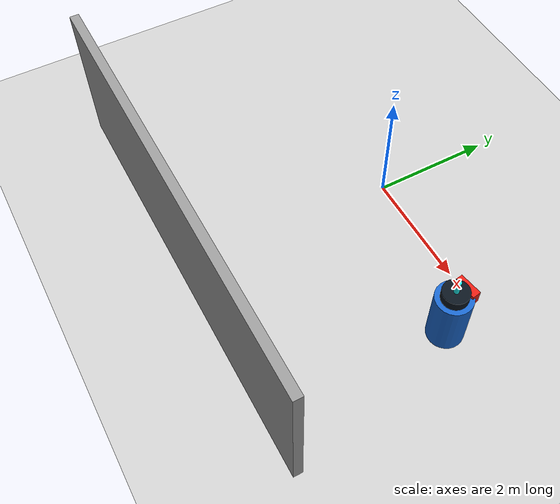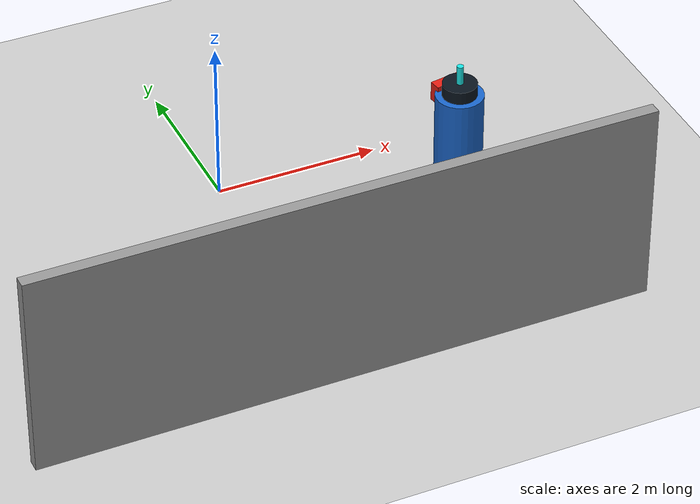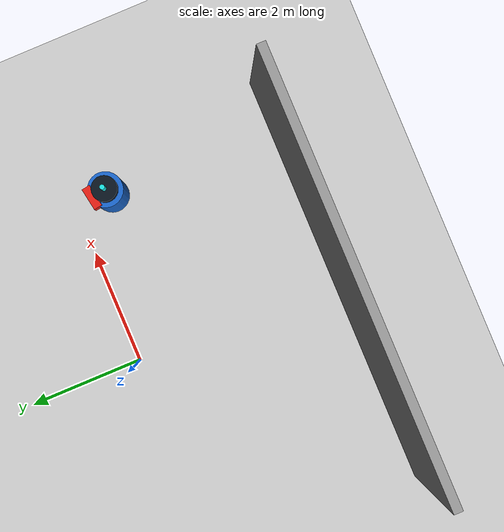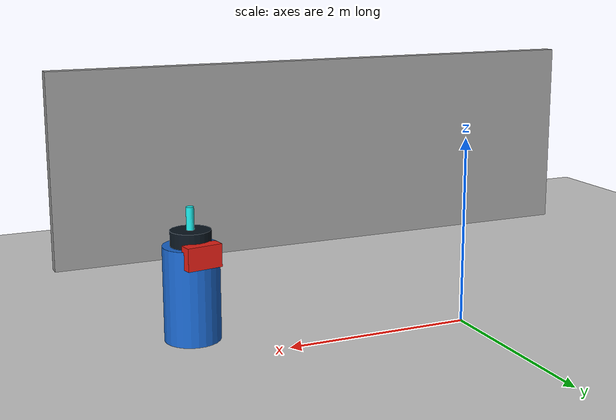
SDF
<sdf version="1.7">
 <world name="default">
  <plugin name="socnav_plugin" filename="libSocNavPlugin.so">
   <robot_name>robot</robot_name>
   <trajectory_file>/home/hunav_gz_classic_ws/SocNav3_trajectories/src6/000003814.json</trajectory_file>
   <human_slots>1</human_slots>
   <goal_angle_mesh>
    <angle_threshold>2.33477021821</angle_threshold>
    <uri>/home/hunav_gz_classic_ws/src/socnav_gazebo_reproducer/meshes/000003814_goal_angle_00.stl</uri>
   </goal_angle_mesh>
  </plugin>
  <light name="sun" type="directional">
   <pose>0 0 10 0 -0 0</pose>
   <diffuse>0.8 0.8 0.8 1</diffuse>
   <specular>0.2 0.2 0.2 1</specular>
   <attenuation>
    <range>1000</range>
    <constant>0.9</constant>
    <linear>0.01</linear>
    <quadratic>0.001</quadratic>
   </attenuation>
   <direction>-0.5 0.1 -0.9</direction>
   <spot><inner_angle>0</inner_angle><outer_angle>0</outer_angle><falloff>0</falloff></spot>
  </light>
  <model name="ground_plane">
   <static>1</static>
   <link name="link">
    <collision name="collision">
     <geometry><plane><normal>0 0 1</normal><size>100 100</size></plane></geometry>
     <surface><friction><ode><mu>100</mu><mu2>50</mu2></ode></friction></surface>
    </collision>
    <visual name="visual">
     <cast_shadows>0</cast_shadows>
     <geometry><plane><normal>0 0 1</normal><size>100 100</size></plane></geometry>
     <material>
      <script><uri>file://media/materials/scripts/kitchen.material</uri><name>Kitchen/CounterTop_H</name></script>
     </material>
    </visual>
   </link>
  </model>
  <gravity>0 0 -9.8</gravity>
  <magnetic_field>6e-06 2.3e-05 -4.2e-05</magnetic_field>
  <atmosphere type="adiabatic"/>
  <physics type="ode">
   <max_step_size>0.001</max_step_size>
   <real_time_factor>1</real_time_factor>
   <real_time_update_rate>1000</real_time_update_rate>
  </physics>
  <scene><ambient>0.4 0.4 0.4 1</ambient><background>0.7 0.7 0.7 1</background><shadows>1</shadows></scene>
  <audio><device>default</device></audio>
  <spherical_coordinates>
   <surface_model>EARTH_WGS84</surface_model>
   <latitude_deg>0</latitude_deg>
   <longitude_deg>0</longitude_deg>
   <elevation>0</elevation>
   <heading_deg>0</heading_deg>
  </spherical_coordinates>
  <model name="robot">
   <pose>2.8102148867667003 -0.6611837461238518 0.5 0 0 1.7351787613253449</pose>
   <link name="link">
    <collision name="collision">
     <geometry><cylinder><radius>0.29420983942868556</radius><length>1.0</length></cylinder></geometry>
    </collision>
    <visual name="visual">
     <geometry><cylinder><radius>0.29420983942868556</radius><length>1.0</length></cylinder></geometry>
     <material><ambient>0.1 0.4 0.8 1</ambient><diffuse>0.1 0.4 0.8 1</diffuse></material>
    </visual>
    <visual name="robot_top">
     <pose>0 0 0.58 0 0 0</pose>
     <geometry><cylinder><radius>0.21183108438865358</radius><length>0.16</length></cylinder></geometry>
     <material><ambient>0.04 0.08 0.12 1</ambient><diffuse>0.04 0.08 0.12 1</diffuse></material>
    </visual>
    <visual name="robot_front">
     <pose>0.24713626512009587 0 0.44 0 0 0</pose>
     <geometry><box><size>0.14122072292576907 0.3765885944687175 0.24</size></box></geometry>
     <material><ambient>0.9 0.12 0.08 1</ambient><diffuse>0.9 0.12 0.08 1</diffuse></material>
    </visual>
    <visual name="robot_sensor">
     <pose>0 0 0.78 0 0 0</pose>
     <geometry><cylinder><radius>0.04118937752001598</radius><length>0.24</length></cylinder></geometry>
     <material><ambient>0.1 0.9 0.9 1</ambient><diffuse>0.1 0.9 0.9 1</diffuse></material>
    </visual>
   </link>
  </model>
  <model name="simple_world_test">
   <link name="Wall_0">
    <collision name="Wall_0_Collision">
     <geometry><box><size>7.36648097458637 0.15 2.5</size></box></geometry>
     <pose>0 0 1.25 0 -0 0</pose>
    </collision>
    <visual name="Wall_0_Visual">
     <pose>0 0 1.25 0 -0 0</pose>
     <geometry><box><size>7.36648097458637 0.15 2.5</size></box></geometry>
     <material>
      <script><uri>file://media/materials/scripts/gazebo.material</uri><name>Gazebo/Grey</name></script>
      <ambient>1 1 1 1</ambient>
     </material>
     <meta><layer>0</layer></meta>
    </visual>
    <pose>0.0 -3.673240487293185 0 0 -0 -3.141592653589793</pose>
   </link>
   <static>1</static>
  </model>
 </world>
</sdf>
